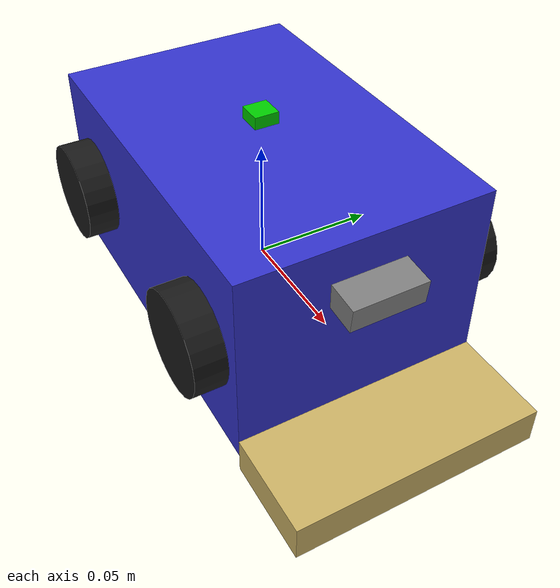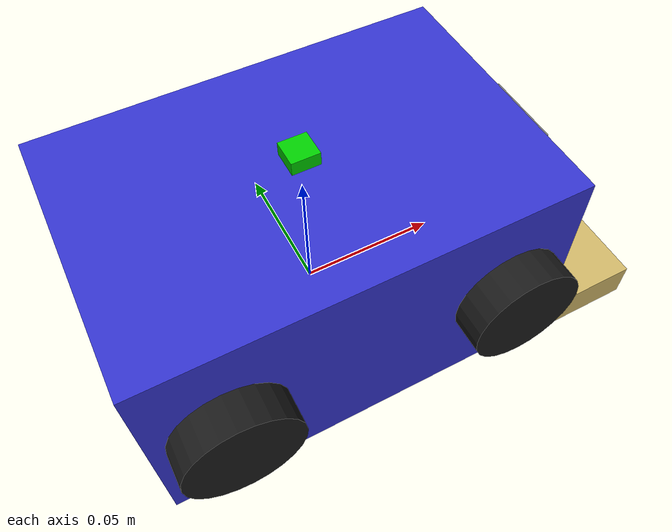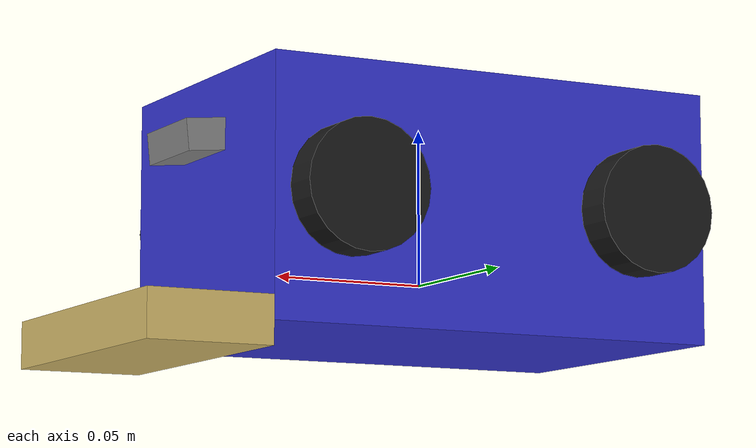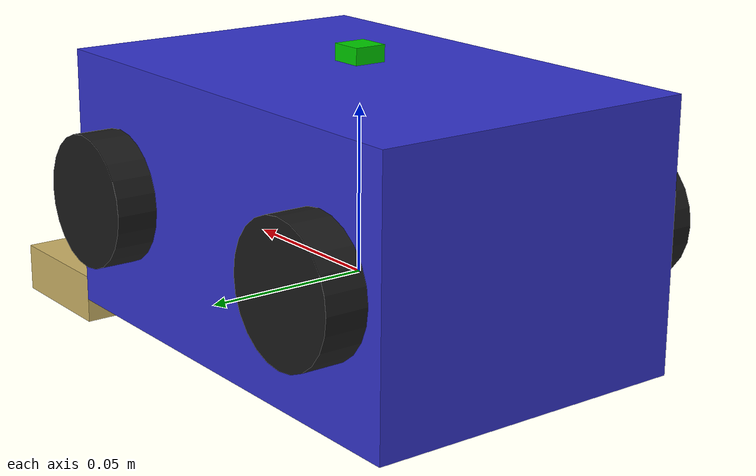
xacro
<?xml version="1.0"?>
<robot name="aspect_rover" xmlns:xacro="http://www.ros.org/wiki/xacro">

  <!-- Chassis dimensions (metres) -->
  <xacro:property name="chassis_length" value="0.15"/>
  <xacro:property name="chassis_width"  value="0.10"/>
  <xacro:property name="chassis_height" value="0.08"/>
  <xacro:property name="chassis_mass"   value="0.2"/>

  <!-- Wheel dimensions -->
  <xacro:property name="wheel_radius" value="0.02"/>
  <xacro:property name="wheel_width"  value="0.015"/>
  <xacro:property name="wheel_mass"   value="0.025"/>
  <xacro:property name="wheelbase_x"  value="0.05"/>
  <xacro:property name="wheelbase_y"  value="0.055"/>

  <!-- Excavation scoop dimensions -->
  <xacro:property name="scoop_length" value="0.04"/>
  <xacro:property name="scoop_width"  value="${chassis_width}"/>
  <xacro:property name="scoop_height" value="0.015"/>
  <xacro:property name="scoop_mass"   value="0.05"/>

  <!-- ======================== Base links ======================== -->

  <link name="base_footprint"/>

  <joint name="base_joint" type="fixed">
    <parent link="base_footprint"/>
    <child  link="base_link"/>
    <origin xyz="0 0 ${wheel_radius}" rpy="0 0 0"/>
  </joint>

  <link name="base_link">
    <visual>
      <geometry>
        <box size="${chassis_length} ${chassis_width} ${chassis_height}"/>
      </geometry>
      <material name="blue">
        <color rgba="0.2 0.2 0.8 1.0"/>
      </material>
    </visual>
    <collision>
      <geometry>
        <box size="${chassis_length} ${chassis_width} ${chassis_height}"/>
      </geometry>
    </collision>
    <inertial>
      <mass value="${chassis_mass}"/>
      <!-- Box inertia: ixx=m(y²+z²)/12, iyy=m(x²+z²)/12, izz=m(x²+y²)/12 -->
      <inertia ixx="0.000273" ixy="0.0" ixz="0.0"
               iyy="0.000482" iyz="0.0"
               izz="0.000542"/>
    </inertial>
  </link>

  <!-- ======================== Wheel macro ======================== -->

  <xacro:macro name="wheel" params="prefix reflect_lr reflect_fb">
    <link name="${prefix}_wheel_link">
      <visual>
        <origin xyz="0 0 0" rpy="1.5708 0 0"/>
        <geometry>
          <cylinder radius="${wheel_radius}" length="${wheel_width}"/>
        </geometry>
        <material name="black">
          <color rgba="0.1 0.1 0.1 1.0"/>
        </material>
      </visual>
      <collision>
        <origin xyz="0 0 0" rpy="1.5708 0 0"/>
        <geometry>
          <cylinder radius="${wheel_radius}" length="${wheel_width}"/>
        </geometry>
      </collision>
      <inertial>
        <mass value="${wheel_mass}"/>
        <!-- Cylinder inertia: ixx=iyy=m(3r²+h²)/12, izz=mr²/2 -->
        <inertia ixx="0.0000030" ixy="0.0" ixz="0.0"
                 iyy="0.0000030" iyz="0.0"
                 izz="0.0000050"/>
      </inertial>
    </link>

    <joint name="${prefix}_wheel_joint" type="continuous">
      <parent link="base_link"/>
      <child  link="${prefix}_wheel_link"/>
      <origin xyz="${reflect_fb * wheelbase_x} ${reflect_lr * wheelbase_y} 0"
              rpy="0 0 0"/>
      <axis xyz="0 1 0"/>
    </joint>
  </xacro:macro>

  <!-- Instantiate 4 wheels -->
  <xacro:wheel prefix="front_left"  reflect_lr=" 1" reflect_fb=" 1"/>
  <xacro:wheel prefix="front_right" reflect_lr="-1" reflect_fb=" 1"/>
  <xacro:wheel prefix="rear_left"   reflect_lr=" 1" reflect_fb="-1"/>
  <xacro:wheel prefix="rear_right"  reflect_lr="-1" reflect_fb="-1"/>

  <!-- ======================== IMU ======================== -->

  <link name="imu_link">
    <visual>
      <geometry>
        <box size="0.01 0.01 0.005"/>
      </geometry>
      <material name="green">
        <color rgba="0.0 0.8 0.0 1.0"/>
      </material>
    </visual>
    <inertial>
      <mass value="0.005"/>
      <inertia ixx="0.000001" ixy="0.0" ixz="0.0"
               iyy="0.000001" iyz="0.0"
               izz="0.000001"/>
    </inertial>
  </link>

  <joint name="imu_joint" type="fixed">
    <parent link="base_link"/>
    <child  link="imu_link"/>
    <origin xyz="0 0 ${chassis_height / 2 + 0.005}" rpy="0 0 0"/>
  </joint>

  <!-- ======================== Camera ======================== -->

  <link name="camera_link">
    <visual>
      <geometry>
        <box size="0.015 0.03 0.01"/>
      </geometry>
      <material name="grey">
        <color rgba="0.5 0.5 0.5 1.0"/>
      </material>
    </visual>
    <inertial>
      <mass value="0.010"/>
      <inertia ixx="0.000001" ixy="0.0" ixz="0.0"
               iyy="0.000001" iyz="0.0"
               izz="0.000001"/>
    </inertial>
  </link>

  <joint name="camera_joint" type="fixed">
    <parent link="base_link"/>
    <child  link="camera_link"/>
    <origin xyz="${chassis_length / 2 + 0.005} 0 0.02" rpy="0 0.1 0"/>
  </joint>

  <link name="camera_optical_link"/>

  <joint name="camera_optical_joint" type="fixed">
    <parent link="camera_link"/>
    <child  link="camera_optical_link"/>
    <origin xyz="0 0 0" rpy="-1.5708 0 -1.5708"/>
  </joint>

  <!-- ======================== Excavation Scoop ======================== -->

  <link name="scoop_link">
    <visual>
      <origin xyz="${scoop_length / 2} 0 0" rpy="0 0 0"/>
      <geometry>
        <box size="${scoop_length} ${scoop_width} ${scoop_height}"/>
      </geometry>
      <material name="tan">
        <color rgba="0.8 0.7 0.4 1.0"/>
      </material>
    </visual>
    <collision>
      <origin xyz="${scoop_length / 2} 0 0" rpy="0 0 0"/>
      <geometry>
        <box size="${scoop_length} ${scoop_width} ${scoop_height}"/>
      </geometry>
    </collision>
    <inertial>
      <origin xyz="${scoop_length / 2} 0 0" rpy="0 0 0"/>
      <mass value="${scoop_mass}"/>
      <!-- Box inertia: ixx=m(y²+z²)/12, iyy=m(x²+z²)/12, izz=m(x²+y²)/12 -->
      <inertia ixx="0.0000426" ixy="0.0" ixz="0.0"
               iyy="0.0000076" iyz="0.0"
               izz="0.0000483"/>
    </inertial>
  </link>

  <joint name="scoop_joint" type="revolute">
    <parent link="base_link"/>
    <child  link="scoop_link"/>
    <!-- Pivot at front-bottom edge of chassis -->
    <origin xyz="${chassis_length / 2} 0 ${-(chassis_height / 2)}" rpy="0 0 0"/>
    <axis xyz="0 1 0"/>
    <limit lower="-0.5236" upper="1.5708"
           effort="10.0" velocity="1.0"/>
  </joint>

  <!-- ======================== Gazebo plugins ======================== -->

  <gazebo>
    <plugin filename="gz-sim-diff-drive-system"
            name="gz::sim::systems::DiffDrive">
      <left_joint>front_left_wheel_joint</left_joint>
      <left_joint>rear_left_wheel_joint</left_joint>
      <right_joint>front_right_wheel_joint</right_joint>
      <right_joint>rear_right_wheel_joint</right_joint>
      <wheel_separation>${wheelbase_y * 2}</wheel_separation>
      <wheel_radius>${wheel_radius}</wheel_radius>
      <max_linear_acceleration>1.0</max_linear_acceleration>
      <max_angular_acceleration>2.0</max_angular_acceleration>
      <!-- Gazebo topic that ros_gz_bridge will forward to /cmd_vel -->
      <topic>/model/aspect_rover/cmd_vel</topic>
      <odom_topic>/model/aspect_rover/odometry</odom_topic>
      <frame_id>odom</frame_id>
      <child_frame_id>base_footprint</child_frame_id>
      <odom_publish_frequency>50</odom_publish_frequency>
    </plugin>
  </gazebo>

  <!--
    Joint state publisher plugin — publishes wheel encoder positions so
    robot_state_publisher can compute TF for the four wheel joints.
  -->
  <gazebo>
    <plugin filename="gz-sim-joint-state-publisher-system"
            name="gz::sim::systems::JointStatePublisher">
      <topic>/model/aspect_rover/joint_states</topic>
      <joint_name>front_left_wheel_joint</joint_name>
      <joint_name>front_right_wheel_joint</joint_name>
      <joint_name>rear_left_wheel_joint</joint_name>
      <joint_name>rear_right_wheel_joint</joint_name>
      <joint_name>scoop_joint</joint_name>
    </plugin>
  </gazebo>

  <!--
    IMU sensor plugin — publishes raw IMU data that robot_localization
    fuses with odometry via EKF.
  -->
  <gazebo reference="imu_link">
    <sensor name="imu_sensor" type="imu">
      <always_on>true</always_on>
      <update_rate>100</update_rate>
      <topic>/model/aspect_rover/imu</topic>
      <gz_frame_id>imu_link</gz_frame_id>
    </sensor>
  </gazebo>

</robot>
